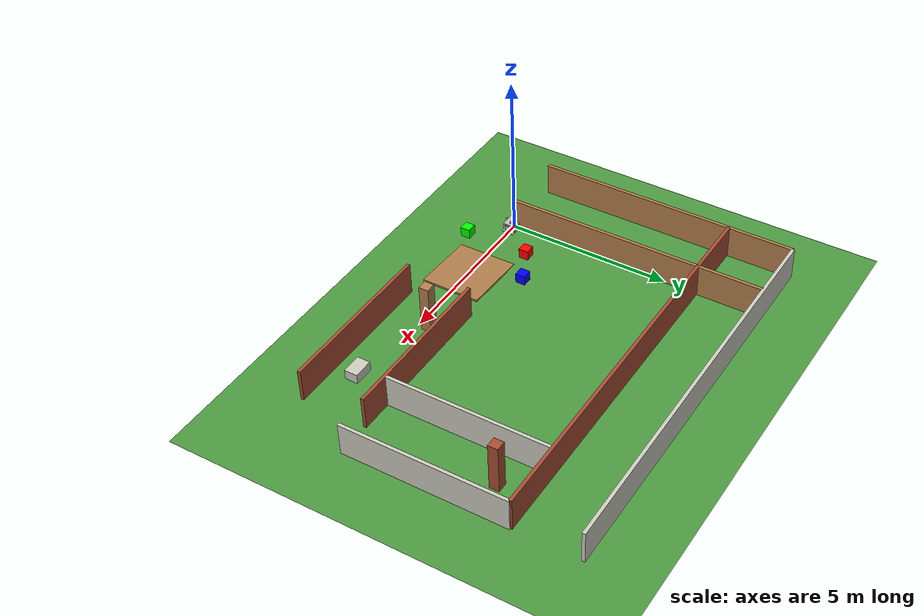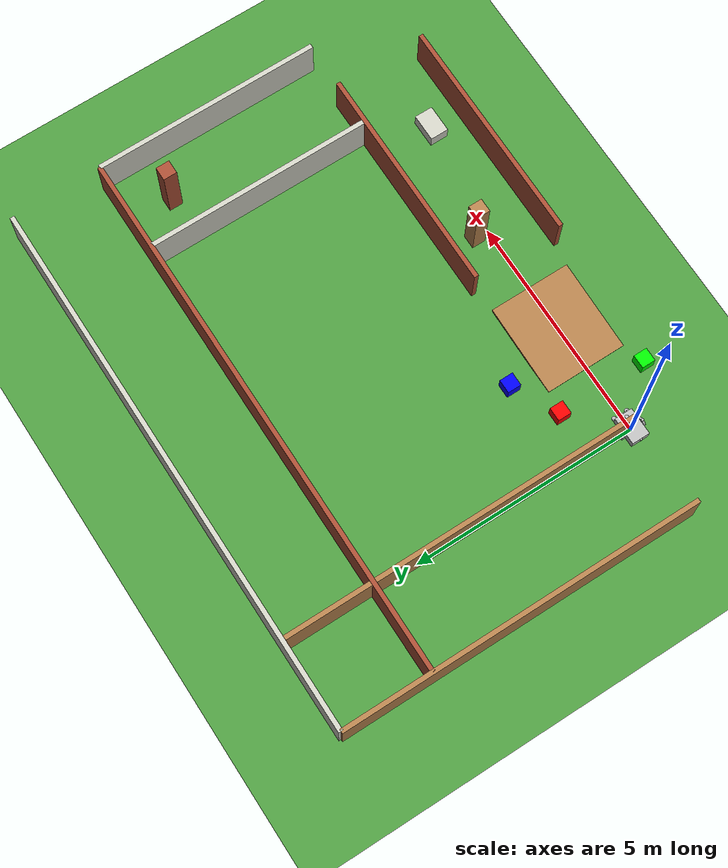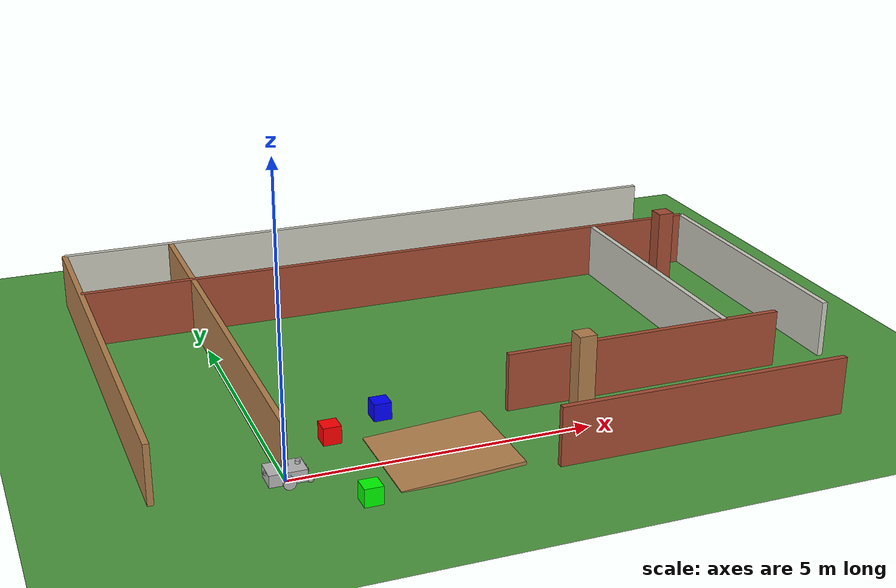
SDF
<sdf version="1.6">
 <world name="default">
  <include><uri>model://sun</uri></include>
  <model name="ground_plane">
   <static>true</static>
   <link name="link">
    <collision name="collision">
     <geometry><plane><normal>0 0 1</normal><size>100 100</size></plane></geometry>
    </collision>
    <visual name="visual">
     <geometry><plane><normal>0 0 1</normal><size>100 100</size></plane></geometry>
     <material>
      <script><uri>file://media/materials/scripts/gazebo.material</uri><name>Gazebo/Grass</name></script>
     </material>
    </visual>
   </link>
  </model>
  <model name="red_box">
   <static>true</static>
   <pose>1 1 0.15 0 0 0</pose>
   <link name="link">
    <visual name="visual">
     <geometry><box><size>0.3 0.3 0.3</size></box></geometry>
     <material><ambient>1 0 0 1</ambient><diffuse>1 0 0 1</diffuse></material>
    </visual>
    <collision name="collision"><geometry><box><size>0.3 0.3 0.3</size></box></geometry></collision>
   </link>
  </model>
  <model name="green_box">
   <static>true</static>
   <pose>1 -1 0.15 0 0 0</pose>
   <link name="link">
    <visual name="visual">
     <geometry><box><size>0.3 0.3 0.3</size></box></geometry>
     <material><ambient>0 1 0 1</ambient><diffuse>0 1 0 1</diffuse></material>
    </visual>
    <collision name="collision"><geometry><box><size>0.3 0.3 0.3</size></box></geometry></collision>
   </link>
  </model>
  <model name="blue_box">
   <static>true</static>
   <pose>2 1.5 0.15 0 0 0</pose>
   <link name="link">
    <visual name="visual">
     <geometry><box><size>0.3 0.3 0.3</size></box></geometry>
     <material><ambient>0 0 1 1</ambient><diffuse>0 0 1 1</diffuse></material>
    </visual>
    <collision name="collision"><geometry><box><size>0.3 0.3 0.3</size></box></geometry></collision>
   </link>
  </model>
  <model name="wall_leg1_south">
   <static>true</static>
   <pose>6.5 -1 0.5 0 0 0</pose>
   <link name="link">
    <collision name="collision"><geometry><box><size>5 0.1 1</size></box></geometry></collision>
    <visual name="visual">
     <geometry><box><size>5 0.1 1</size></box></geometry>
     <material>
      <script><uri>file://media/materials/scripts/gazebo.material</uri><name>Gazebo/Bricks</name></script>
     </material>
    </visual>
   </link>
  </model>
  <model name="wall_leg1_north">
   <static>true</static>
   <pose>6.5 1 0.5 0 0 0</pose>
   <link name="link">
    <collision name="collision"><geometry><box><size>5 0.1 1</size></box></geometry></collision>
    <visual name="visual">
     <geometry><box><size>5 0.1 1</size></box></geometry>
     <material>
      <script><uri>file://media/materials/scripts/gazebo.material</uri><name>Gazebo/Bricks</name></script>
     </material>
    </visual>
   </link>
  </model>
  <model name="wall_leg2_west">
   <static>true</static>
   <pose>8 3.5 0.5 0 0 0</pose>
   <link name="link">
    <collision name="collision"><geometry><box><size>0.1 5 1</size></box></geometry></collision>
    <visual name="visual">
     <geometry><box><size>0.1 5 1</size></box></geometry>
     <material>
      <script><uri>file://media/materials/scripts/gazebo.material</uri><name>Gazebo/PaintedWall</name></script>
     </material>
    </visual>
   </link>
  </model>
  <model name="wall_leg2_east">
   <static>true</static>
   <pose>10 3.5 0.5 0 0 0</pose>
   <link name="link">
    <collision name="collision"><geometry><box><size>0.1 5 1</size></box></geometry></collision>
    <visual name="visual">
     <geometry><box><size>0.1 5 1</size></box></geometry>
     <material>
      <script><uri>file://media/materials/scripts/gazebo.material</uri><name>Gazebo/PaintedWall</name></script>
     </material>
    </visual>
   </link>
  </model>
  <model name="wood_pillar">
   <static>true</static>
   <pose>5 0.3 0.75 0 0 0</pose>
   <link name="link">
    <collision name="collision"><geometry><box><size>0.3 0.3 1.5</size></box></geometry></collision>
    <visual name="visual">
     <geometry><box><size>0.3 0.3 1.5</size></box></geometry>
     <material>
      <script><uri>file://media/materials/scripts/gazebo.material</uri><name>Gazebo/Wood</name></script>
     </material>
    </visual>
   </link>
  </model>
  <model name="painted_curb">
   <static>true</static>
   <pose>7.5 -0.3 0.15 0 0 0</pose>
   <link name="link">
    <collision name="collision"><geometry><box><size>0.6 0.4 0.3</size></box></geometry></collision>
    <visual name="visual">
     <geometry><box><size>0.6 0.4 0.3</size></box></geometry>
     <material>
      <script><uri>file://media/materials/scripts/gazebo.material</uri><name>Gazebo/PaintedWall</name></script>
     </material>
    </visual>
   </link>
  </model>
  <model name="brick_pillar_leg2">
   <static>true</static>
   <pose>9 5 0.75 0 0 0</pose>
   <link name="link">
    <collision name="collision"><geometry><box><size>0.3 0.3 1.5</size></box></geometry></collision>
    <visual name="visual">
     <geometry><box><size>0.3 0.3 1.5</size></box></geometry>
     <material>
      <script><uri>file://media/materials/scripts/gazebo.material</uri><name>Gazebo/Bricks</name></script>
     </material>
    </visual>
   </link>
  </model>
  <model name="entry_ramp">
   <static>true</static>
   <pose>2.5 0 0.03 0 -0.06 0</pose>
   <link name="link">
    <collision name="collision"><geometry><box><size>2 1.8 0.06</size></box></geometry></collision>
    <visual name="visual">
     <geometry><box><size>2 1.8 0.06</size></box></geometry>
     <material>
      <script><uri>file://media/materials/scripts/gazebo.material</uri><name>Gazebo/WoodFloor</name></script>
     </material>
    </visual>
   </link>
  </model>
  <model name="wall_leg3_south">
   <static>true</static>
   <pose>4 6 0.5 0 0 0</pose>
   <link name="link">
    <collision name="collision"><geometry><box><size>12 0.1 1</size></box></geometry></collision>
    <visual name="visual">
     <geometry><box><size>12 0.1 1</size></box></geometry>
     <material>
      <script><uri>file://media/materials/scripts/gazebo.material</uri><name>Gazebo/Bricks</name></script>
     </material>
    </visual>
   </link>
  </model>
  <model name="wall_leg3_north">
   <static>true</static>
   <pose>4 8 0.5 0 0 0</pose>
   <link name="link">
    <collision name="collision"><geometry><box><size>12 0.1 1</size></box></geometry></collision>
    <visual name="visual">
     <geometry><box><size>12 0.1 1</size></box></geometry>
     <material>
      <script><uri>file://media/materials/scripts/gazebo.material</uri><name>Gazebo/PaintedWall</name></script>
     </material>
    </visual>
   </link>
  </model>
  <model name="wall_leg4_west">
   <static>true</static>
   <pose>-2 4 0.5 0 0 0</pose>
   <link name="link">
    <collision name="collision"><geometry><box><size>0.1 8 1</size></box></geometry></collision>
    <visual name="visual">
     <geometry><box><size>0.1 8 1</size></box></geometry>
     <material>
      <script><uri>file://media/materials/scripts/gazebo.material</uri><name>Gazebo/Wood</name></script>
     </material>
    </visual>
   </link>
  </model>
  <model name="wall_leg4_east">
   <static>true</static>
   <pose>0 4 0.5 0 0 0</pose>
   <link name="link">
    <collision name="collision"><geometry><box><size>0.1 8 1</size></box></geometry></collision>
    <visual name="visual">
     <geometry><box><size>0.1 8 1</size></box></geometry>
     <material>
      <script><uri>file://media/materials/scripts/gazebo.material</uri><name>Gazebo/Wood</name></script>
     </material>
    </visual>
   </link>
  </model>
  <model name="ika_rover">
   <link name="base_link">
    <pose>0 0 0.15 0 0 0</pose>
    <inertial>
     <mass>5.0</mass>
     <inertia><ixx>0.1</ixx><iyy>0.1</iyy><izz>0.1</izz><ixy>0</ixy><ixz>0</ixz><iyz>0</iyz></inertia>
    </inertial>
    <collision name="base_collision"><geometry><box><size>0.6 0.4 0.2</size></box></geometry></collision>
    <visual name="base_visual"><geometry><box><size>0.6 0.4 0.2</size></box></geometry></visual>
   </link>
   <link name="left_wheel">
    <pose>0 0.25 0.1 1.5708 0 0</pose>
    <inertial>
     <mass>0.5</mass>
     <inertia><ixx>0.01</ixx><iyy>0.01</iyy><izz>0.01</izz><ixy>0</ixy><ixz>0</ixz><iyz>0</iyz></inertia>
    </inertial>
    <collision name="left_wheel_collision">
     <geometry><cylinder><radius>0.1</radius><length>0.05</length></cylinder></geometry>
     <surface><friction><ode><mu>1.0</mu><mu2>1.0</mu2></ode></friction></surface>
    </collision>
    <visual name="left_wheel_visual">
     <geometry><cylinder><radius>0.1</radius><length>0.05</length></cylinder></geometry>
    </visual>
   </link>
   <link name="right_wheel">
    <pose>0 -0.25 0.1 1.5708 0 0</pose>
    <inertial>
     <mass>0.5</mass>
     <inertia><ixx>0.01</ixx><iyy>0.01</iyy><izz>0.01</izz><ixy>0</ixy><ixz>0</ixz><iyz>0</iyz></inertia>
    </inertial>
    <collision name="right_wheel_collision">
     <geometry><cylinder><radius>0.1</radius><length>0.05</length></cylinder></geometry>
     <surface><friction><ode><mu>1.0</mu><mu2>1.0</mu2></ode></friction></surface>
    </collision>
    <visual name="right_wheel_visual">
     <geometry><cylinder><radius>0.1</radius><length>0.05</length></cylinder></geometry>
    </visual>
   </link>
   <link name="caster_wheel">
    <pose>-0.2 0 0.05 0 0 0</pose>
    <inertial>
     <mass>0.2</mass>
     <inertia><ixx>0.0001</ixx><iyy>0.0001</iyy><izz>0.0001</izz><ixy>0</ixy><ixz>0</ixz><iyz>0</iyz></inertia>
    </inertial>
    <collision name="caster_collision">
     <geometry><sphere><radius>0.05</radius></sphere></geometry>
     <surface><friction><ode><mu>0</mu><mu2>0</mu2></ode></friction></surface>
    </collision>
    <visual name="caster_visual"><geometry><sphere><radius>0.05</radius></sphere></geometry></visual>
   </link>
   <joint name="left_wheel_joint" type="revolute">
    <parent>base_link</parent>
    <child>left_wheel</child>
    <axis>
     <xyz>0 1 0</xyz>
     <use_parent_model_frame>1</use_parent_model_frame>
     <limit><lower>-1e+16</lower><upper>1e+16</upper></limit>
    </axis>
   </joint>
   <joint name="right_wheel_joint" type="revolute">
    <parent>base_link</parent>
    <child>right_wheel</child>
    <axis>
     <xyz>0 1 0</xyz>
     <use_parent_model_frame>1</use_parent_model_frame>
     <limit><lower>-1e+16</lower><upper>1e+16</upper></limit>
    </axis>
   </joint>
   <joint name="caster_joint" type="fixed"><parent>base_link</parent><child>caster_wheel</child></joint>
   <link name="imu_link">
    <pose>0 0 0.25 0 0 0</pose>
    <inertial>
     <mass>0.015</mass>
     <inertia><ixx>1e-05</ixx><ixy>0</ixy><ixz>0</ixz><iyy>1e-05</iyy><iyz>0</iyz><izz>1e-05</izz></inertia>
    </inertial>
    <sensor name="imu_sensor" type="imu"><always_on>1</always_on><update_rate>50.0</update_rate></sensor>
   </link>
   <joint name="imu_joint" type="fixed"><parent>base_link</parent><child>imu_link</child></joint>
   <link name="lidar_link">
    <pose>0.2 0 0.3 0 0 0</pose>
    <inertial>
     <mass>0.1</mass>
     <inertia><ixx>0.0001</ixx><iyy>0.0001</iyy><izz>0.0001</izz><ixy>0</ixy><ixz>0</ixz><iyz>0</iyz></inertia>
    </inertial>
    <visual name="lidar_visual">
     <geometry><cylinder><radius>0.04</radius><length>0.05</length></cylinder></geometry>
    </visual>
    <sensor name="lidar_sensor" type="ray">
     <always_on>true</always_on>
     <update_rate>10</update_rate>
     <ray>
      <scan>
       <horizontal>
        <samples>360</samples>
        <resolution>1</resolution>
        <min_angle>-3.14159</min_angle>
        <max_angle>3.14159</max_angle>
       </horizontal>
      </scan>
      <range><min>0.12</min><max>10.0</max><resolution>0.015</resolution></range>
     </ray>
     <plugin name="lidar_plugin" filename="libgazebo_ros_ray_sensor.so">
      <ros><namespace>/</namespace><remapping>~/out:=scan</remapping></ros>
      <output_type>sensor_msgs/LaserScan</output_type>
      <frame_name>lidar_link</frame_name>
     </plugin>
    </sensor>
   </link>
   <joint name="lidar_joint" type="fixed"><parent>base_link</parent><child>lidar_link</child></joint>
   <link name="camera_link">
    <pose>0.3 0 0.2 0 0 0</pose>
    <inertial>
     <mass>0.05</mass>
     <inertia><ixx>0.0001</ixx><iyy>0.0001</iyy><izz>0.0001</izz><ixy>0</ixy><ixz>0</ixz><iyz>0</iyz></inertia>
    </inertial>
    <visual name="camera_visual"><geometry><box><size>0.05 0.05 0.05</size></box></geometry></visual>
    <sensor name="camera_sensor" type="camera">
     <always_on>true</always_on>
     <update_rate>30</update_rate>
     <camera>
      <horizontal_fov>1.396</horizontal_fov>
      <image><width>640</width><height>480</height><format>R8G8B8</format></image>
      <clip><near>0.05</near><far>15</far></clip>
     </camera>
     <plugin name="camera_plugin" filename="libgazebo_ros_camera.so">
      <ros><namespace>/ika_rover</namespace></ros>
      <frame_name>camera_optical_frame</frame_name>
     </plugin>
    </sensor>
    <sensor name="depth_camera_sensor" type="depth">
     <always_on>true</always_on>
     <update_rate>5</update_rate>
     <camera>
      <horizontal_fov>1.396</horizontal_fov>
      <image><width>320</width><height>240</height><format>R8G8B8</format></image>
      <clip><near>0.25</near><far>8.0</far></clip>
     </camera>
     <plugin name="depth_camera_plugin" filename="libgazebo_ros_camera.so">
      <ros><namespace>/ika_rover</namespace></ros>
      <camera_name>depth_camera</camera_name>
      <frame_name>camera_optical_frame</frame_name>
      <min_depth>0.25</min_depth>
      <max_depth>8.0</max_depth>
     </plugin>
    </sensor>
   </link>
   <joint name="camera_joint" type="fixed"><parent>base_link</parent><child>camera_link</child></joint>
   <link name="right_camera_link">
    <pose>0.3 -0.12 0.2 0 0 0</pose>
    <inertial>
     <mass>0.05</mass>
     <inertia><ixx>0.0001</ixx><iyy>0.0001</iyy><izz>0.0001</izz><ixy>0</ixy><ixz>0</ixz><iyz>0</iyz></inertia>
    </inertial>
    <visual name="right_camera_visual"><geometry><box><size>0.05 0.05 0.05</size></box></geometry></visual>
    <sensor name="right_camera_sensor" type="camera">
     <always_on>true</always_on>
     <update_rate>30</update_rate>
     <camera>
      <horizontal_fov>1.396</horizontal_fov>
      <image><width>640</width><height>480</height><format>R8G8B8</format></image>
      <clip><near>0.05</near><far>15</far></clip>
     </camera>
     <plugin name="right_camera_plugin" filename="libgazebo_ros_camera.so">
      <ros><namespace>/ika_rover</namespace></ros>
      <frame_name>right_camera_optical_frame</frame_name>
     </plugin>
    </sensor>
   </link>
   <joint name="right_camera_joint" type="fixed">
    <parent>base_link</parent>
    <child>right_camera_link</child>
   </joint>
   <joint name="side_right_camera_joint" type="fixed">
    <parent>base_link</parent>
    <child>side_right_camera_link</child>
   </joint>
   <link name="side_right_camera_link">
    <pose>0 -0.25 0.2 0 0 -1.5708</pose>
    <inertial>
     <mass>0.05</mass>
     <inertia><ixx>0.0001</ixx><iyy>0.0001</iyy><izz>0.0001</izz><ixy>0</ixy><ixz>0</ixz><iyz>0</iyz></inertia>
    </inertial>
    <visual name="side_right_camera_visual"><geometry><box><size>0.05 0.05 0.05</size></box></geometry></visual>
    <sensor name="side_right_camera_sensor" type="camera">
     <always_on>true</always_on>
     <update_rate>30</update_rate>
     <camera>
      <horizontal_fov>1.396</horizontal_fov>
      <image><width>640</width><height>480</height><format>R8G8B8</format></image>
      <clip><near>0.05</near><far>15</far></clip>
     </camera>
     <plugin name="side_right_camera_plugin" filename="libgazebo_ros_camera.so">
      <ros><namespace>/ika_rover</namespace></ros>
      <frame_name>side_right_camera_optical_frame</frame_name>
     </plugin>
    </sensor>
   </link>
   <joint name="side_left_camera_joint" type="fixed">
    <parent>base_link</parent>
    <child>side_left_camera_link</child>
   </joint>
   <link name="side_left_camera_link">
    <pose>0 0.25 0.2 0 0 1.5708</pose>
    <inertial>
     <mass>0.05</mass>
     <inertia><ixx>0.0001</ixx><iyy>0.0001</iyy><izz>0.0001</izz><ixy>0</ixy><ixz>0</ixz><iyz>0</iyz></inertia>
    </inertial>
    <visual name="side_left_camera_visual"><geometry><box><size>0.05 0.05 0.05</size></box></geometry></visual>
    <sensor name="side_left_camera_sensor" type="camera">
     <always_on>true</always_on>
     <update_rate>30</update_rate>
     <camera>
      <horizontal_fov>1.396</horizontal_fov>
      <image><width>640</width><height>480</height><format>R8G8B8</format></image>
      <clip><near>0.05</near><far>15</far></clip>
     </camera>
     <plugin name="side_left_camera_plugin" filename="libgazebo_ros_camera.so">
      <ros><namespace>/ika_rover</namespace></ros>
      <frame_name>side_left_camera_optical_frame</frame_name>
     </plugin>
    </sensor>
   </link>
   <joint name="rear_camera_joint" type="fixed"><parent>base_link</parent><child>rear_camera_link</child></joint>
   <link name="rear_camera_link">
    <pose>-0.3 0 0.2 0 0 3.14159</pose>
    <inertial>
     <mass>0.05</mass>
     <inertia><ixx>0.0001</ixx><iyy>0.0001</iyy><izz>0.0001</izz><ixy>0</ixy><ixz>0</ixz><iyz>0</iyz></inertia>
    </inertial>
    <visual name="rear_camera_visual"><geometry><box><size>0.05 0.05 0.05</size></box></geometry></visual>
    <sensor name="rear_camera_sensor" type="camera">
     <always_on>true</always_on>
     <update_rate>30</update_rate>
     <camera>
      <horizontal_fov>1.396</horizontal_fov>
      <image><width>640</width><height>480</height><format>R8G8B8</format></image>
      <clip><near>0.05</near><far>15</far></clip>
     </camera>
     <plugin name="rear_camera_plugin" filename="libgazebo_ros_camera.so">
      <ros><namespace>/ika_rover</namespace></ros>
      <frame_name>rear_camera_optical_frame</frame_name>
     </plugin>
    </sensor>
   </link>
   <joint name="front_caster_left_joint" type="fixed">
    <parent>base_link</parent>
    <child>front_caster_left</child>
   </joint>
   <link name="front_caster_left">
    <pose>0.35 0.15 0.05 0 0 0</pose>
    <inertial>
     <mass>0.2</mass>
     <inertia><ixx>0.0001</ixx><iyy>0.0001</iyy><izz>0.0001</izz><ixy>0</ixy><ixz>0</ixz><iyz>0</iyz></inertia>
    </inertial>
    <collision name="front_caster_left_collision">
     <geometry><sphere><radius>0.05</radius></sphere></geometry>
     <surface><friction><ode><mu>0</mu><mu2>0</mu2></ode></friction></surface>
    </collision>
    <visual name="front_caster_left_visual"><geometry><sphere><radius>0.05</radius></sphere></geometry></visual>
   </link>
   <joint name="front_caster_right_joint" type="fixed">
    <parent>base_link</parent>
    <child>front_caster_right</child>
   </joint>
   <link name="front_caster_right">
    <pose>0.35 -0.15 0.05 0 0 0</pose>
    <inertial>
     <mass>0.2</mass>
     <inertia><ixx>0.0001</ixx><iyy>0.0001</iyy><izz>0.0001</izz><ixy>0</ixy><ixz>0</ixz><iyz>0</iyz></inertia>
    </inertial>
    <collision name="front_caster_right_collision">
     <geometry><sphere><radius>0.05</radius></sphere></geometry>
     <surface><friction><ode><mu>0</mu><mu2>0</mu2></ode></friction></surface>
    </collision>
    <visual name="front_caster_right_visual"><geometry><sphere><radius>0.05</radius></sphere></geometry></visual>
   </link>
   <plugin name="diff_drive" filename="libgazebo_ros_diff_drive.so">
    <ros><namespace>/</namespace></ros>
    <update_rate>30</update_rate>
    <left_joint>left_wheel_joint</left_joint>
    <right_joint>right_wheel_joint</right_joint>
    <wheel_separation>0.5</wheel_separation>
    <wheel_diameter>0.2</wheel_diameter>
    <max_wheel_torque>20</max_wheel_torque>
    <max_wheel_acceleration>1.0</max_wheel_acceleration>
    <command_topic>cmd_vel</command_topic>
    <odometry_topic>odom</odometry_topic>
    <odometry_frame>odom</odometry_frame>
    <robot_base_frame>base_link</robot_base_frame>
    <publish_odom>true</publish_odom>
    <publish_odom_tf>true</publish_odom_tf>
    <publish_wheel_tf>false</publish_wheel_tf>
   </plugin>
  </model>
 </world>
</sdf>
